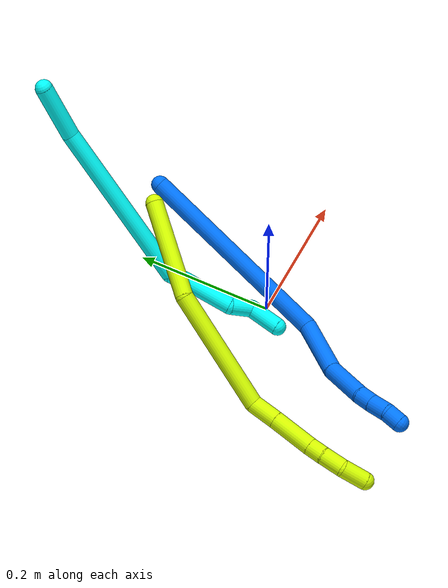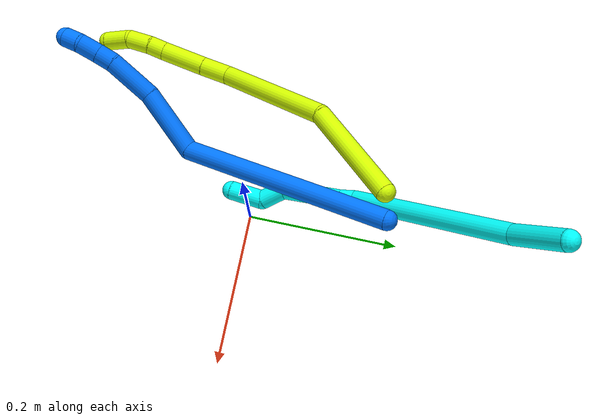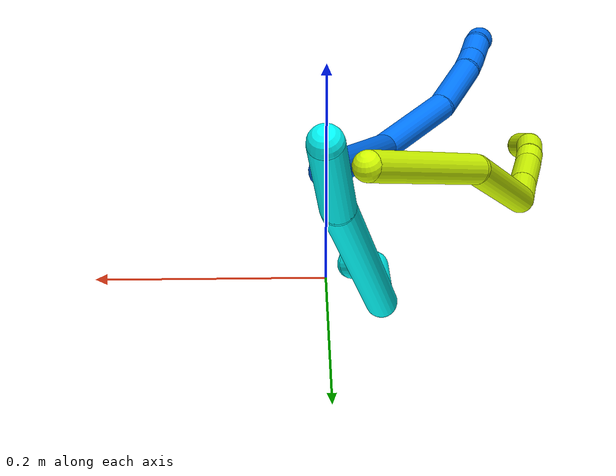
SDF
<sdf version="1.7">
 <world name="default">
  <model name="3">
   <static>0</static>
   <link name="3">
    <collision name="collision-cylinder-e_1_1_4">
     <pose>6.5e-05 -0.003432 -0.03926 3.05441 0.001657 0.037986</pose>
     <geometry><cylinder><radius>0.0125</radius><length>0.078819</length></cylinder></geometry>
     <surface>
      <friction><ode><mu>1.16</mu><mu2>1.16</mu2><slip1>0</slip1><slip2>0</slip2></ode></friction>
      <contact><ode><kp>1e+06</kp><kd>1</kd><max_vel>0</max_vel><min_depth>0.001</min_depth></ode></contact>
     </surface>
    </collision>
    <visual name="visual-cylinder-e_1_1_4">
     <pose>6.5e-05 -0.003432 -0.03926 3.05441 0.001657 0.037986</pose>
     <geometry><cylinder><radius>0.0125</radius><length>0.078819</length></cylinder></geometry>
     <material><ambient>0.003922 1 0.996078 1</ambient></material>
    </visual>
    <collision name="collision-cylinder-e_2_4_5">
     <pose>-0.008635 -0.043093 -0.196009 2.84248 -0.071176 -0.464046</pose>
     <geometry><cylinder><radius>0.0125</radius><length>0.246522</length></cylinder></geometry>
     <surface>
      <friction><ode><mu>1.16</mu><mu2>1.16</mu2><slip1>0</slip1><slip2>0</slip2></ode></friction>
      <contact><ode><kp>1e+06</kp><kd>1</kd><max_vel>0</max_vel><min_depth>0.001</min_depth></ode></contact>
     </surface>
    </collision>
    <visual name="visual-cylinder-e_2_4_5">
     <pose>-0.008635 -0.043093 -0.196009 2.84248 -0.071176 -0.464046</pose>
     <geometry><cylinder><radius>0.0125</radius><length>0.246522</length></cylinder></geometry>
     <material><ambient>0.003922 1 0.996078 1</ambient></material>
    </visual>
    <collision name="collision-cylinder-e_3_5_6">
     <pose>-0.016253 -0.087351 -0.31939 2.20387 0.114799 0.225921</pose>
     <geometry><cylinder><radius>0.0125</radius><length>0.020046</length></cylinder></geometry>
     <surface>
      <friction><ode><mu>1.16</mu><mu2>1.16</mu2><slip1>0</slip1><slip2>0</slip2></ode></friction>
      <contact><ode><kp>1e+06</kp><kd>1</kd><max_vel>0</max_vel><min_depth>0.001</min_depth></ode></contact>
     </surface>
    </collision>
    <visual name="visual-cylinder-e_3_5_6">
     <pose>-0.016253 -0.087351 -0.31939 2.20387 0.114799 0.225921</pose>
     <geometry><cylinder><radius>0.0125</radius><length>0.020046</length></cylinder></geometry>
     <material><ambient>0.003922 1 0.996078 1</ambient></material>
    </visual>
    <collision name="collision-cylinder-e_4_6_7">
     <pose>-0.01518 -0.124884 -0.349577 2.25967 -0.001957 -0.004146</pose>
     <geometry><cylinder><radius>0.0125</radius><length>0.076443</length></cylinder></geometry>
     <surface>
      <friction><ode><mu>1.16</mu><mu2>1.16</mu2><slip1>0</slip1><slip2>0</slip2></ode></friction>
      <contact><ode><kp>1e+06</kp><kd>1</kd><max_vel>0</max_vel><min_depth>0.001</min_depth></ode></contact>
     </surface>
    </collision>
    <visual name="visual-cylinder-e_4_6_7">
     <pose>-0.01518 -0.124884 -0.349577 2.25967 -0.001957 -0.004146</pose>
     <geometry><cylinder><radius>0.0125</radius><length>0.076443</length></cylinder></geometry>
     <material><ambient>0.003922 1 0.996078 1</ambient></material>
    </visual>
    <collision name="collision-cylinder-e_5_7_8">
     <pose>-0.006158 -0.163719 -0.383959 2.39512 0.584777 1.31072</pose>
     <geometry><cylinder><radius>0.0125</radius><length>0.032955</length></cylinder></geometry>
     <surface>
      <friction><ode><mu>1.16</mu><mu2>1.16</mu2><slip1>0</slip1><slip2>0</slip2></ode></friction>
      <contact><ode><kp>1e+06</kp><kd>1</kd><max_vel>0</max_vel><min_depth>0.001</min_depth></ode></contact>
     </surface>
    </collision>
    <visual name="visual-cylinder-e_5_7_8">
     <pose>-0.006158 -0.163719 -0.383959 2.39512 0.584777 1.31072</pose>
     <geometry><cylinder><radius>0.0125</radius><length>0.032955</length></cylinder></geometry>
     <material><ambient>0.003922 1 0.996078 1</ambient></material>
    </visual>
    <collision name="collision-cylinder-e_6_8_2">
     <pose>7.9e-05 -0.190301 -0.408372 2.26385 -0.126793 -0.268845</pose>
     <geometry><cylinder><radius>0.0125</radius><length>0.045215</length></cylinder></geometry>
     <surface>
      <friction><ode><mu>1.16</mu><mu2>1.16</mu2><slip1>0</slip1><slip2>0</slip2></ode></friction>
      <contact><ode><kp>1e+06</kp><kd>1</kd><max_vel>0</max_vel><min_depth>0.001</min_depth></ode></contact>
     </surface>
    </collision>
    <visual name="visual-cylinder-e_6_8_2">
     <pose>7.9e-05 -0.190301 -0.408372 2.26385 -0.126793 -0.268845</pose>
     <geometry><cylinder><radius>0.0125</radius><length>0.045215</length></cylinder></geometry>
     <material><ambient>0.003922 1 0.996078 1</ambient></material>
    </visual>
    <collision name="collision-sphere-2">
     <pose>-0.00278 -0.207554 -0.4227 0 -0 0</pose>
     <geometry><sphere><radius>0.0125</radius></sphere></geometry>
     <surface>
      <friction><ode><mu>1.16</mu><mu2>1.16</mu2><slip1>0</slip1><slip2>0</slip2></ode></friction>
      <contact><ode><kp>1e+06</kp><kd>1</kd><max_vel>0</max_vel><min_depth>0.001</min_depth></ode></contact>
     </surface>
    </collision>
    <visual name="visual-sphere-2">
     <pose>-0.00278 -0.207554 -0.4227 0 -0 0</pose>
     <geometry><sphere><radius>0.0125</radius></sphere></geometry>
     <material><ambient>0.003922 1 0.996078 1</ambient></material>
    </visual>
    <collision name="collision-sphere-4">
     <pose>0.000131 -0.006863 -0.078519 0 -0 0</pose>
     <geometry><sphere><radius>0.0125</radius></sphere></geometry>
     <surface>
      <friction><ode><mu>1.16</mu><mu2>1.16</mu2><slip1>0</slip1><slip2>0</slip2></ode></friction>
      <contact><ode><kp>1e+06</kp><kd>1</kd><max_vel>0</max_vel><min_depth>0.001</min_depth></ode></contact>
     </surface>
    </collision>
    <visual name="visual-sphere-4">
     <pose>0.000131 -0.006863 -0.078519 0 -0 0</pose>
     <geometry><sphere><radius>0.0125</radius></sphere></geometry>
     <material><ambient>0.003922 1 0.996078 1</ambient></material>
    </visual>
    <collision name="collision-sphere-1">
     <geometry><sphere><radius>0.0125</radius></sphere></geometry>
     <surface>
      <friction><ode><mu>1.16</mu><mu2>1.16</mu2><slip1>0</slip1><slip2>0</slip2></ode></friction>
      <contact><ode><kp>1e+06</kp><kd>1</kd><max_vel>0</max_vel><min_depth>0.001</min_depth></ode></contact>
     </surface>
    </collision>
    <visual name="visual-sphere-1">
     <geometry><sphere><radius>0.0125</radius></sphere></geometry>
     <material><ambient>0.003922 1 0.996078 1</ambient></material>
    </visual>
    <collision name="collision-sphere-8">
     <pose>0.002938 -0.173049 -0.394045 0 -0 0</pose>
     <geometry><sphere><radius>0.0125</radius></sphere></geometry>
     <surface>
      <friction><ode><mu>1.16</mu><mu2>1.16</mu2><slip1>0</slip1><slip2>0</slip2></ode></friction>
      <contact><ode><kp>1e+06</kp><kd>1</kd><max_vel>0</max_vel><min_depth>0.001</min_depth></ode></contact>
     </surface>
    </collision>
    <visual name="visual-sphere-8">
     <pose>0.002938 -0.173049 -0.394045 0 -0 0</pose>
     <geometry><sphere><radius>0.0125</radius></sphere></geometry>
     <material><ambient>0.003922 1 0.996078 1</ambient></material>
    </visual>
    <collision name="collision-sphere-5">
     <pose>-0.017401 -0.079323 -0.313499 0 -0 0</pose>
     <geometry><sphere><radius>0.0125</radius></sphere></geometry>
     <surface>
      <friction><ode><mu>1.16</mu><mu2>1.16</mu2><slip1>0</slip1><slip2>0</slip2></ode></friction>
      <contact><ode><kp>1e+06</kp><kd>1</kd><max_vel>0</max_vel><min_depth>0.001</min_depth></ode></contact>
     </surface>
    </collision>
    <visual name="visual-sphere-5">
     <pose>-0.017401 -0.079323 -0.313499 0 -0 0</pose>
     <geometry><sphere><radius>0.0125</radius></sphere></geometry>
     <material><ambient>0.003922 1 0.996078 1</ambient></material>
    </visual>
    <collision name="collision-sphere-6">
     <pose>-0.015105 -0.095378 -0.325281 0 -0 0</pose>
     <geometry><sphere><radius>0.0125</radius></sphere></geometry>
     <surface>
      <friction><ode><mu>1.16</mu><mu2>1.16</mu2><slip1>0</slip1><slip2>0</slip2></ode></friction>
      <contact><ode><kp>1e+06</kp><kd>1</kd><max_vel>0</max_vel><min_depth>0.001</min_depth></ode></contact>
     </surface>
    </collision>
    <visual name="visual-sphere-6">
     <pose>-0.015105 -0.095378 -0.325281 0 -0 0</pose>
     <geometry><sphere><radius>0.0125</radius></sphere></geometry>
     <material><ambient>0.003922 1 0.996078 1</ambient></material>
    </visual>
    <collision name="collision-sphere-7">
     <pose>-0.015254 -0.154389 -0.373872 0 -0 0</pose>
     <geometry><sphere><radius>0.0125</radius></sphere></geometry>
     <surface>
      <friction><ode><mu>1.16</mu><mu2>1.16</mu2><slip1>0</slip1><slip2>0</slip2></ode></friction>
      <contact><ode><kp>1e+06</kp><kd>1</kd><max_vel>0</max_vel><min_depth>0.001</min_depth></ode></contact>
     </surface>
    </collision>
    <visual name="visual-sphere-7">
     <pose>-0.015254 -0.154389 -0.373872 0 -0 0</pose>
     <geometry><sphere><radius>0.0125</radius></sphere></geometry>
     <material><ambient>0.003922 1 0.996078 1</ambient></material>
    </visual>
    <inertial>
     <pose>-0.007618 -0.072382 -0.231316 0 -0 0</pose>
     <mass>0.5</mass>
     <inertia>
      <ixx>0.000659</ixx>
      <ixy>0</ixy>
      <ixz>0</ixz>
      <iyy>-0.001713</iyy>
      <iyz>0</iyz>
      <izz>0.000471</izz>
     </inertia>
    </inertial>
   </link>
   <pose>0.009972 0.348839 0.28756 -0.478876 0.158279 0.022902</pose>
  </model>
  <model name="14">
   <static>0</static>
   <link name="14">
    <collision name="collision-cylinder-e_1_1_4">
     <pose>-0.013768 -0.041642 -0.134221 2.84076 -0.097661 -0.623831</pose>
     <geometry><cylinder><radius>0.0125</radius><length>0.282409</length></cylinder></geometry>
     <surface>
      <friction><ode><mu>1.16</mu><mu2>1.16</mu2><slip1>0</slip1><slip2>0</slip2></ode></friction>
      <contact><ode><kp>1e+06</kp><kd>1</kd><max_vel>0</max_vel><min_depth>0.001</min_depth></ode></contact>
     </surface>
    </collision>
    <visual name="visual-cylinder-e_1_1_4">
     <pose>-0.013768 -0.041642 -0.134221 2.84076 -0.097661 -0.623831</pose>
     <geometry><cylinder><radius>0.0125</radius><length>0.282409</length></cylinder></geometry>
     <material><ambient>0 0.462745 1 1</ambient></material>
    </visual>
    <collision name="collision-cylinder-e_2_4_5">
     <pose>-0.035884 -0.119712 -0.290769 2.12067 -0.192944 -0.342256</pose>
     <geometry><cylinder><radius>0.0125</radius><length>0.087069</length></cylinder></geometry>
     <surface>
      <friction><ode><mu>1.16</mu><mu2>1.16</mu2><slip1>0</slip1><slip2>0</slip2></ode></friction>
      <contact><ode><kp>1e+06</kp><kd>1</kd><max_vel>0</max_vel><min_depth>0.001</min_depth></ode></contact>
     </surface>
    </collision>
    <visual name="visual-cylinder-e_2_4_5">
     <pose>-0.035884 -0.119712 -0.290769 2.12067 -0.192944 -0.342256</pose>
     <geometry><cylinder><radius>0.0125</radius><length>0.087069</length></cylinder></geometry>
     <material><ambient>0 0.462745 1 1</ambient></material>
    </visual>
    <collision name="collision-cylinder-e_3_5_6">
     <pose>-0.042523 -0.180861 -0.331141 2.20133 0.055796 0.109723</pose>
     <geometry><cylinder><radius>0.0125</radius><length>0.061306</length></cylinder></geometry>
     <surface>
      <friction><ode><mu>1.16</mu><mu2>1.16</mu2><slip1>0</slip1><slip2>0</slip2></ode></friction>
      <contact><ode><kp>1e+06</kp><kd>1</kd><max_vel>0</max_vel><min_depth>0.001</min_depth></ode></contact>
     </surface>
    </collision>
    <visual name="visual-cylinder-e_3_5_6">
     <pose>-0.042523 -0.180861 -0.331141 2.20133 0.055796 0.109723</pose>
     <geometry><cylinder><radius>0.0125</radius><length>0.061306</length></cylinder></geometry>
     <material><ambient>0 0.462745 1 1</ambient></material>
    </visual>
    <collision name="collision-cylinder-e_4_6_7">
     <pose>-0.039377 -0.213119 -0.357006 2.37465 0.131457 0.323459</pose>
     <geometry><cylinder><radius>0.0125</radius><length>0.021911</length></cylinder></geometry>
     <surface>
      <friction><ode><mu>1.16</mu><mu2>1.16</mu2><slip1>0</slip1><slip2>0</slip2></ode></friction>
      <contact><ode><kp>1e+06</kp><kd>1</kd><max_vel>0</max_vel><min_depth>0.001</min_depth></ode></contact>
     </surface>
    </collision>
    <visual name="visual-cylinder-e_4_6_7">
     <pose>-0.039377 -0.213119 -0.357006 2.37465 0.131457 0.323459</pose>
     <geometry><cylinder><radius>0.0125</radius><length>0.021911</length></cylinder></geometry>
     <material><ambient>0 0.462745 1 1</ambient></material>
    </visual>
    <collision name="collision-cylinder-e_5_7_8">
     <pose>-0.035425 -0.229666 -0.373902 2.35982 0.194265 0.464374</pose>
     <geometry><cylinder><radius>0.0125</radius><length>0.026069</length></cylinder></geometry>
     <surface>
      <friction><ode><mu>1.16</mu><mu2>1.16</mu2><slip1>0</slip1><slip2>0</slip2></ode></friction>
      <contact><ode><kp>1e+06</kp><kd>1</kd><max_vel>0</max_vel><min_depth>0.001</min_depth></ode></contact>
     </surface>
    </collision>
    <visual name="visual-cylinder-e_5_7_8">
     <pose>-0.035425 -0.229666 -0.373902 2.35982 0.194265 0.464374</pose>
     <geometry><cylinder><radius>0.0125</radius><length>0.026069</length></cylinder></geometry>
     <material><ambient>0 0.462745 1 1</ambient></material>
    </visual>
    <collision name="collision-cylinder-e_6_8_2">
     <pose>-0.032847 -0.243647 -0.39236 2.65438 0.005767 0.023202</pose>
     <geometry><cylinder><radius>0.0125</radius><length>0.021235</length></cylinder></geometry>
     <surface>
      <friction><ode><mu>1.16</mu><mu2>1.16</mu2><slip1>0</slip1><slip2>0</slip2></ode></friction>
      <contact><ode><kp>1e+06</kp><kd>1</kd><max_vel>0</max_vel><min_depth>0.001</min_depth></ode></contact>
     </surface>
    </collision>
    <visual name="visual-cylinder-e_6_8_2">
     <pose>-0.032847 -0.243647 -0.39236 2.65438 0.005767 0.023202</pose>
     <geometry><cylinder><radius>0.0125</radius><length>0.021235</length></cylinder></geometry>
     <material><ambient>0 0.462745 1 1</ambient></material>
    </visual>
    <collision name="collision-sphere-2">
     <pose>-0.032786 -0.248618 -0.401742 0 -0 0</pose>
     <geometry><sphere><radius>0.0125</radius></sphere></geometry>
     <surface>
      <friction><ode><mu>1.16</mu><mu2>1.16</mu2><slip1>0</slip1><slip2>0</slip2></ode></friction>
      <contact><ode><kp>1e+06</kp><kd>1</kd><max_vel>0</max_vel><min_depth>0.001</min_depth></ode></contact>
     </surface>
    </collision>
    <visual name="visual-sphere-2">
     <pose>-0.032786 -0.248618 -0.401742 0 -0 0</pose>
     <geometry><sphere><radius>0.0125</radius></sphere></geometry>
     <material><ambient>0 0.462745 1 1</ambient></material>
    </visual>
    <collision name="collision-sphere-4">
     <pose>-0.027537 -0.083283 -0.268441 0 -0 0</pose>
     <geometry><sphere><radius>0.0125</radius></sphere></geometry>
     <surface>
      <friction><ode><mu>1.16</mu><mu2>1.16</mu2><slip1>0</slip1><slip2>0</slip2></ode></friction>
      <contact><ode><kp>1e+06</kp><kd>1</kd><max_vel>0</max_vel><min_depth>0.001</min_depth></ode></contact>
     </surface>
    </collision>
    <visual name="visual-sphere-4">
     <pose>-0.027537 -0.083283 -0.268441 0 -0 0</pose>
     <geometry><sphere><radius>0.0125</radius></sphere></geometry>
     <material><ambient>0 0.462745 1 1</ambient></material>
    </visual>
    <collision name="collision-sphere-1">
     <geometry><sphere><radius>0.0125</radius></sphere></geometry>
     <surface>
      <friction><ode><mu>1.16</mu><mu2>1.16</mu2><slip1>0</slip1><slip2>0</slip2></ode></friction>
      <contact><ode><kp>1e+06</kp><kd>1</kd><max_vel>0</max_vel><min_depth>0.001</min_depth></ode></contact>
     </surface>
    </collision>
    <visual name="visual-sphere-1">
     <geometry><sphere><radius>0.0125</radius></sphere></geometry>
     <material><ambient>0 0.462745 1 1</ambient></material>
    </visual>
    <collision name="collision-sphere-8">
     <pose>-0.032909 -0.238676 -0.382978 0 -0 0</pose>
     <geometry><sphere><radius>0.0125</radius></sphere></geometry>
     <surface>
      <friction><ode><mu>1.16</mu><mu2>1.16</mu2><slip1>0</slip1><slip2>0</slip2></ode></friction>
      <contact><ode><kp>1e+06</kp><kd>1</kd><max_vel>0</max_vel><min_depth>0.001</min_depth></ode></contact>
     </surface>
    </collision>
    <visual name="visual-sphere-8">
     <pose>-0.032909 -0.238676 -0.382978 0 -0 0</pose>
     <geometry><sphere><radius>0.0125</radius></sphere></geometry>
     <material><ambient>0 0.462745 1 1</ambient></material>
    </visual>
    <collision name="collision-sphere-5">
     <pose>-0.044232 -0.156141 -0.313097 0 -0 0</pose>
     <geometry><sphere><radius>0.0125</radius></sphere></geometry>
     <surface>
      <friction><ode><mu>1.16</mu><mu2>1.16</mu2><slip1>0</slip1><slip2>0</slip2></ode></friction>
      <contact><ode><kp>1e+06</kp><kd>1</kd><max_vel>0</max_vel><min_depth>0.001</min_depth></ode></contact>
     </surface>
    </collision>
    <visual name="visual-sphere-5">
     <pose>-0.044232 -0.156141 -0.313097 0 -0 0</pose>
     <geometry><sphere><radius>0.0125</radius></sphere></geometry>
     <material><ambient>0 0.462745 1 1</ambient></material>
    </visual>
    <collision name="collision-sphere-6">
     <pose>-0.040813 -0.205582 -0.349186 0 -0 0</pose>
     <geometry><sphere><radius>0.0125</radius></sphere></geometry>
     <surface>
      <friction><ode><mu>1.16</mu><mu2>1.16</mu2><slip1>0</slip1><slip2>0</slip2></ode></friction>
      <contact><ode><kp>1e+06</kp><kd>1</kd><max_vel>0</max_vel><min_depth>0.001</min_depth></ode></contact>
     </surface>
    </collision>
    <visual name="visual-sphere-6">
     <pose>-0.040813 -0.205582 -0.349186 0 -0 0</pose>
     <geometry><sphere><radius>0.0125</radius></sphere></geometry>
     <material><ambient>0 0.462745 1 1</ambient></material>
    </visual>
    <collision name="collision-sphere-7">
     <pose>-0.037941 -0.220655 -0.364826 0 -0 0</pose>
     <geometry><sphere><radius>0.0125</radius></sphere></geometry>
     <surface>
      <friction><ode><mu>1.16</mu><mu2>1.16</mu2><slip1>0</slip1><slip2>0</slip2></ode></friction>
      <contact><ode><kp>1e+06</kp><kd>1</kd><max_vel>0</max_vel><min_depth>0.001</min_depth></ode></contact>
     </surface>
    </collision>
    <visual name="visual-sphere-7">
     <pose>-0.037941 -0.220655 -0.364826 0 -0 0</pose>
     <geometry><sphere><radius>0.0125</radius></sphere></geometry>
     <material><ambient>0 0.462745 1 1</ambient></material>
    </visual>
    <inertial>
     <pose>-0.024207 -0.098204 -0.218849 0 -0 0</pose>
     <mass>0.5</mass>
     <inertia>
      <ixx>0.000491</ixx>
      <ixy>0</ixy>
      <ixz>0</ixz>
      <iyy>-0.002606</iyy>
      <iyz>0</iyz>
      <izz>0.000789</izz>
     </inertia>
    </inertial>
   </link>
   <pose>0.005399 0.169585 0.183528 -0.891304 -0.63473 -0.373986</pose>
  </model>
  <model name="15">
   <static>0</static>
   <link name="15">
    <collision name="collision-cylinder-e_1_1_4">
     <pose>-0.04445 -0.02984 -0.043726 2.54275 -0.698456 -1.73525</pose>
     <geometry><cylinder><radius>0.0125</radius><length>0.138249</length></cylinder></geometry>
     <surface>
      <friction><ode><mu>1.16</mu><mu2>1.16</mu2><slip1>0</slip1><slip2>0</slip2></ode></friction>
      <contact><ode><kp>1e+06</kp><kd>1</kd><max_vel>0</max_vel><min_depth>0.001</min_depth></ode></contact>
     </surface>
    </collision>
    <visual name="visual-cylinder-e_1_1_4">
     <pose>-0.04445 -0.02984 -0.043726 2.54275 -0.698456 -1.73525</pose>
     <geometry><cylinder><radius>0.0125</radius><length>0.138249</length></cylinder></geometry>
     <material><ambient>0.835294 1 0 1</ambient></material>
    </visual>
    <collision name="collision-cylinder-e_2_4_5">
     <pose>-0.114528 -0.107119 -0.155978 2.53607 -0.298326 -0.896837</pose>
     <geometry><cylinder><radius>0.0125</radius><length>0.174389</length></cylinder></geometry>
     <surface>
      <friction><ode><mu>1.16</mu><mu2>1.16</mu2><slip1>0</slip1><slip2>0</slip2></ode></friction>
      <contact><ode><kp>1e+06</kp><kd>1</kd><max_vel>0</max_vel><min_depth>0.001</min_depth></ode></contact>
     </surface>
    </collision>
    <visual name="visual-cylinder-e_2_4_5">
     <pose>-0.114528 -0.107119 -0.155978 2.53607 -0.298326 -0.896837</pose>
     <geometry><cylinder><radius>0.0125</radius><length>0.174389</length></cylinder></geometry>
     <material><ambient>0.835294 1 0 1</ambient></material>
    </visual>
    <collision name="collision-cylinder-e_3_5_6">
     <pose>-0.145617 -0.171126 -0.232342 2.01268 -0.289545 -0.452626</pose>
     <geometry><cylinder><radius>0.0125</radius><length>0.038251</length></cylinder></geometry>
     <surface>
      <friction><ode><mu>1.16</mu><mu2>1.16</mu2><slip1>0</slip1><slip2>0</slip2></ode></friction>
      <contact><ode><kp>1e+06</kp><kd>1</kd><max_vel>0</max_vel><min_depth>0.001</min_depth></ode></contact>
     </surface>
    </collision>
    <visual name="visual-cylinder-e_3_5_6">
     <pose>-0.145617 -0.171126 -0.232342 2.01268 -0.289545 -0.452626</pose>
     <geometry><cylinder><radius>0.0125</radius><length>0.038251</length></cylinder></geometry>
     <material><ambient>0.835294 1 0 1</ambient></material>
    </visual>
    <collision name="collision-cylinder-e_4_6_7">
     <pose>-0.16019 -0.213218 -0.252814 2.03042 -0.309679 -0.492638</pose>
     <geometry><cylinder><radius>0.0125</radius><length>0.059802</length></cylinder></geometry>
     <surface>
      <friction><ode><mu>1.16</mu><mu2>1.16</mu2><slip1>0</slip1><slip2>0</slip2></ode></friction>
      <contact><ode><kp>1e+06</kp><kd>1</kd><max_vel>0</max_vel><min_depth>0.001</min_depth></ode></contact>
     </surface>
    </collision>
    <visual name="visual-cylinder-e_4_6_7">
     <pose>-0.16019 -0.213218 -0.252814 2.03042 -0.309679 -0.492638</pose>
     <geometry><cylinder><radius>0.0125</radius><length>0.059802</length></cylinder></geometry>
     <material><ambient>0.835294 1 0 1</ambient></material>
    </visual>
    <collision name="collision-cylinder-e_5_7_8">
     <pose>-0.172951 -0.248682 -0.269026 1.9163 -0.33254 -0.468752</pose>
     <geometry><cylinder><radius>0.0125</radius><length>0.022356</length></cylinder></geometry>
     <surface>
      <friction><ode><mu>1.16</mu><mu2>1.16</mu2><slip1>0</slip1><slip2>0</slip2></ode></friction>
      <contact><ode><kp>1e+06</kp><kd>1</kd><max_vel>0</max_vel><min_depth>0.001</min_depth></ode></contact>
     </surface>
    </collision>
    <visual name="visual-cylinder-e_5_7_8">
     <pose>-0.172951 -0.248682 -0.269026 1.9163 -0.33254 -0.468752</pose>
     <geometry><cylinder><radius>0.0125</radius><length>0.022356</length></cylinder></geometry>
     <material><ambient>0.835294 1 0 1</ambient></material>
    </visual>
    <collision name="collision-cylinder-e_6_8_9">
     <pose>-0.180159 -0.272344 -0.278848 1.99785 -0.23182 -0.357939</pose>
     <geometry><cylinder><radius>0.0125</radius><length>0.030979</length></cylinder></geometry>
     <surface>
      <friction><ode><mu>1.16</mu><mu2>1.16</mu2><slip1>0</slip1><slip2>0</slip2></ode></friction>
      <contact><ode><kp>1e+06</kp><kd>1</kd><max_vel>0</max_vel><min_depth>0.001</min_depth></ode></contact>
     </surface>
    </collision>
    <visual name="visual-cylinder-e_6_8_9">
     <pose>-0.180159 -0.272344 -0.278848 1.99785 -0.23182 -0.357939</pose>
     <geometry><cylinder><radius>0.0125</radius><length>0.030979</length></cylinder></geometry>
     <material><ambient>0.835294 1 0 1</ambient></material>
    </visual>
    <collision name="collision-cylinder-e_7_9_2">
     <pose>-0.182244 -0.300175 -0.29615 2.23555 0.082005 0.168159</pose>
     <geometry><cylinder><radius>0.0125</radius><length>0.035974</length></cylinder></geometry>
     <surface>
      <friction><ode><mu>1.16</mu><mu2>1.16</mu2><slip1>0</slip1><slip2>0</slip2></ode></friction>
      <contact><ode><kp>1e+06</kp><kd>1</kd><max_vel>0</max_vel><min_depth>0.001</min_depth></ode></contact>
     </surface>
    </collision>
    <visual name="visual-cylinder-e_7_9_2">
     <pose>-0.182244 -0.300175 -0.29615 2.23555 0.082005 0.168159</pose>
     <geometry><cylinder><radius>0.0125</radius><length>0.035974</length></cylinder></geometry>
     <material><ambient>0.835294 1 0 1</ambient></material>
    </visual>
    <collision name="collision-sphere-2">
     <pose>-0.180771 -0.314284 -0.307208 0 -0 0</pose>
     <geometry><sphere><radius>0.0125</radius></sphere></geometry>
     <surface>
      <friction><ode><mu>1.16</mu><mu2>1.16</mu2><slip1>0</slip1><slip2>0</slip2></ode></friction>
      <contact><ode><kp>1e+06</kp><kd>1</kd><max_vel>0</max_vel><min_depth>0.001</min_depth></ode></contact>
     </surface>
    </collision>
    <visual name="visual-sphere-2">
     <pose>-0.180771 -0.314284 -0.307208 0 -0 0</pose>
     <geometry><sphere><radius>0.0125</radius></sphere></geometry>
     <material><ambient>0.835294 1 0 1</ambient></material>
    </visual>
    <collision name="collision-sphere-9">
     <pose>-0.183717 -0.286066 -0.285092 0 -0 0</pose>
     <geometry><sphere><radius>0.0125</radius></sphere></geometry>
     <surface>
      <friction><ode><mu>1.16</mu><mu2>1.16</mu2><slip1>0</slip1><slip2>0</slip2></ode></friction>
      <contact><ode><kp>1e+06</kp><kd>1</kd><max_vel>0</max_vel><min_depth>0.001</min_depth></ode></contact>
     </surface>
    </collision>
    <visual name="visual-sphere-9">
     <pose>-0.183717 -0.286066 -0.285092 0 -0 0</pose>
     <geometry><sphere><radius>0.0125</radius></sphere></geometry>
     <material><ambient>0.835294 1 0 1</ambient></material>
    </visual>
    <collision name="collision-sphere-4">
     <pose>-0.088899 -0.059681 -0.087453 0 -0 0</pose>
     <geometry><sphere><radius>0.0125</radius></sphere></geometry>
     <surface>
      <friction><ode><mu>1.16</mu><mu2>1.16</mu2><slip1>0</slip1><slip2>0</slip2></ode></friction>
      <contact><ode><kp>1e+06</kp><kd>1</kd><max_vel>0</max_vel><min_depth>0.001</min_depth></ode></contact>
     </surface>
    </collision>
    <visual name="visual-sphere-4">
     <pose>-0.088899 -0.059681 -0.087453 0 -0 0</pose>
     <geometry><sphere><radius>0.0125</radius></sphere></geometry>
     <material><ambient>0.835294 1 0 1</ambient></material>
    </visual>
    <collision name="collision-sphere-1">
     <geometry><sphere><radius>0.0125</radius></sphere></geometry>
     <surface>
      <friction><ode><mu>1.16</mu><mu2>1.16</mu2><slip1>0</slip1><slip2>0</slip2></ode></friction>
      <contact><ode><kp>1e+06</kp><kd>1</kd><max_vel>0</max_vel><min_depth>0.001</min_depth></ode></contact>
     </surface>
    </collision>
    <visual name="visual-sphere-1">
     <geometry><sphere><radius>0.0125</radius></sphere></geometry>
     <material><ambient>0.835294 1 0 1</ambient></material>
    </visual>
    <collision name="collision-sphere-8">
     <pose>-0.1766 -0.258623 -0.272604 0 -0 0</pose>
     <geometry><sphere><radius>0.0125</radius></sphere></geometry>
     <surface>
      <friction><ode><mu>1.16</mu><mu2>1.16</mu2><slip1>0</slip1><slip2>0</slip2></ode></friction>
      <contact><ode><kp>1e+06</kp><kd>1</kd><max_vel>0</max_vel><min_depth>0.001</min_depth></ode></contact>
     </surface>
    </collision>
    <visual name="visual-sphere-8">
     <pose>-0.1766 -0.258623 -0.272604 0 -0 0</pose>
     <geometry><sphere><radius>0.0125</radius></sphere></geometry>
     <material><ambient>0.835294 1 0 1</ambient></material>
    </visual>
    <collision name="collision-sphere-5">
     <pose>-0.140156 -0.154557 -0.224503 0 -0 0</pose>
     <geometry><sphere><radius>0.0125</radius></sphere></geometry>
     <surface>
      <friction><ode><mu>1.16</mu><mu2>1.16</mu2><slip1>0</slip1><slip2>0</slip2></ode></friction>
      <contact><ode><kp>1e+06</kp><kd>1</kd><max_vel>0</max_vel><min_depth>0.001</min_depth></ode></contact>
     </surface>
    </collision>
    <visual name="visual-sphere-5">
     <pose>-0.140156 -0.154557 -0.224503 0 -0 0</pose>
     <geometry><sphere><radius>0.0125</radius></sphere></geometry>
     <material><ambient>0.835294 1 0 1</ambient></material>
    </visual>
    <collision name="collision-sphere-6">
     <pose>-0.151077 -0.187694 -0.24018 0 -0 0</pose>
     <geometry><sphere><radius>0.0125</radius></sphere></geometry>
     <surface>
      <friction><ode><mu>1.16</mu><mu2>1.16</mu2><slip1>0</slip1><slip2>0</slip2></ode></friction>
      <contact><ode><kp>1e+06</kp><kd>1</kd><max_vel>0</max_vel><min_depth>0.001</min_depth></ode></contact>
     </surface>
    </collision>
    <visual name="visual-sphere-6">
     <pose>-0.151077 -0.187694 -0.24018 0 -0 0</pose>
     <geometry><sphere><radius>0.0125</radius></sphere></geometry>
     <material><ambient>0.835294 1 0 1</ambient></material>
    </visual>
    <collision name="collision-sphere-7">
     <pose>-0.169302 -0.238741 -0.265447 0 -0 0</pose>
     <geometry><sphere><radius>0.0125</radius></sphere></geometry>
     <surface>
      <friction><ode><mu>1.16</mu><mu2>1.16</mu2><slip1>0</slip1><slip2>0</slip2></ode></friction>
      <contact><ode><kp>1e+06</kp><kd>1</kd><max_vel>0</max_vel><min_depth>0.001</min_depth></ode></contact>
     </surface>
    </collision>
    <visual name="visual-sphere-7">
     <pose>-0.169302 -0.238741 -0.265447 0 -0 0</pose>
     <geometry><sphere><radius>0.0125</radius></sphere></geometry>
     <material><ambient>0.835294 1 0 1</ambient></material>
    </visual>
    <inertial>
     <pose>-0.114542 -0.133794 -0.165117 0 -0 0</pose>
     <mass>0.5</mass>
     <inertia>
      <ixx>-0.000261</ixx>
      <ixy>0</ixy>
      <ixz>0</ixz>
      <iyy>-0.000615</iyy>
      <iyz>0</iyz>
      <izz>0.000635</izz>
     </inertia>
    </inertial>
   </link>
   <pose>-0.026755 0.161567 0.183404 -0.251639 0.236921 0.13468</pose>
  </model>
 </world>
</sdf>
